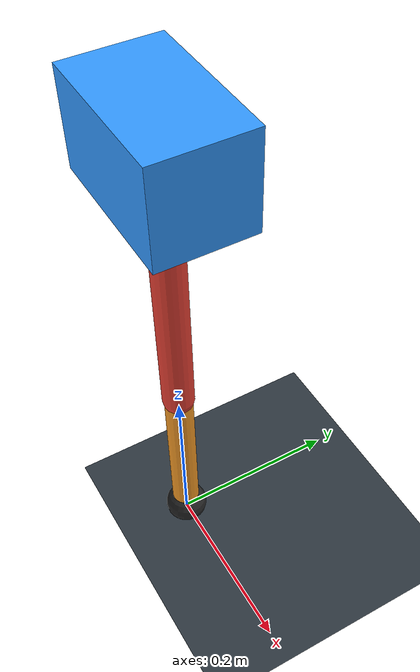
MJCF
<mujoco model="single_axis_two_bar">
  <compiler angle="radian" inertiafromgeom="true"/>
  <option timestep="0.001" integrator="implicitfast" gravity="0 0 -9.81"/>
  <default>
    <joint damping="0.08"/>
    <geom friction="1.2 0.01 0.0001" condim="3"/>
  </default>
  <worldbody>
    <geom name="floor" type="plane" size="5 5 0.1" rgba="0.18 0.22 0.25 1"/>
    <body name="carriage" pos="0 0 0.5306880505604668">
      <joint name="pole_slide" type="slide" axis="0 0 1"/>
      <geom name="payload" type="box" size="0.08 0.05 0.05" mass="3.385607938418133" rgba="0.2 0.6 1 1"/>
      <body name="thigh" pos="0 0 0">
        <joint name="hip" type="hinge" axis="0 1 0"/>
        <geom name="thigh_link" type="capsule" fromto="0 0 0 0 0 -0.31679723850457625" size="0.018" mass="0.2257222185406841" rgba="0.9 0.25 0.2 1"/>
        <body name="shank" pos="0 0 -0.31679723850457625">
          <joint name="knee" type="hinge" axis="0 1 0"/>
          <geom name="shank_link" type="capsule" fromto="0 0 0 0 0 -0.20453064867116263" size="0.016" mass="0.14573078981227658" rgba="0.95 0.6 0.15 1"/>
          <geom name="foot" type="sphere" pos="0 0 -0.20453064867116263" size="0.025" mass="0.03" rgba="0.15 0.15 0.15 1"/>
          <site name="toe" pos="0 0 -0.20453064867116263" size="0.008"/>
        </body>
      </body>
    </body>
  </worldbody>
  <actuator>
    <motor name="hip_motor" joint="hip" ctrlrange="-27.854723250315732 27.854723250315732"/>
    <motor name="knee_motor" joint="knee" ctrlrange="-106.43399019029435 106.43399019029435"/>
  </actuator>
</mujoco>
